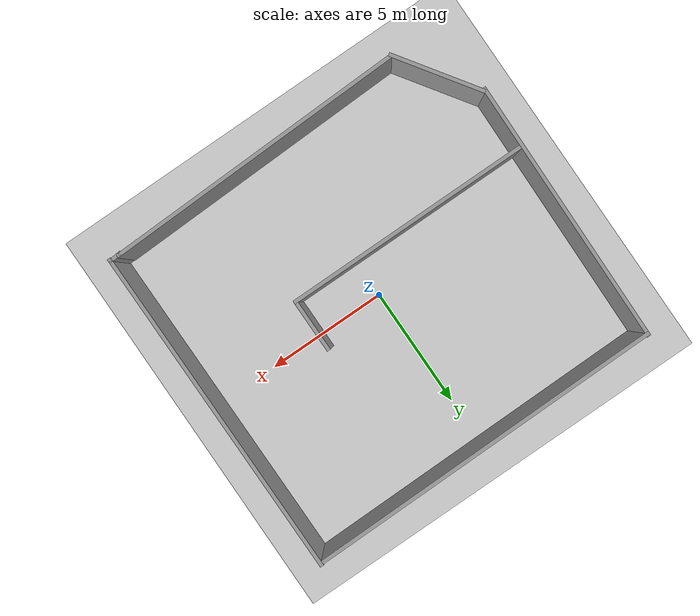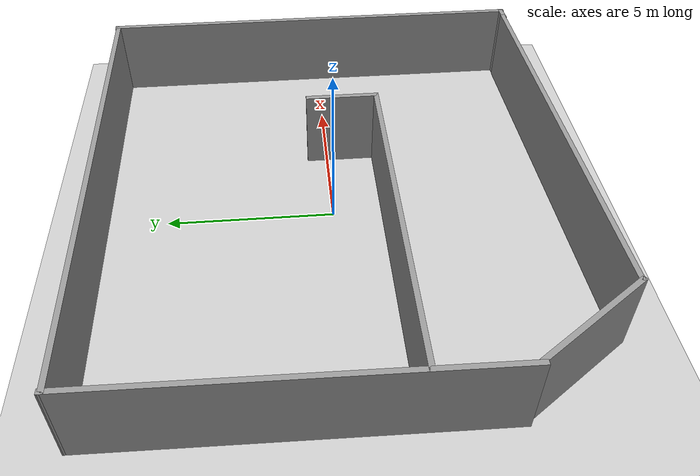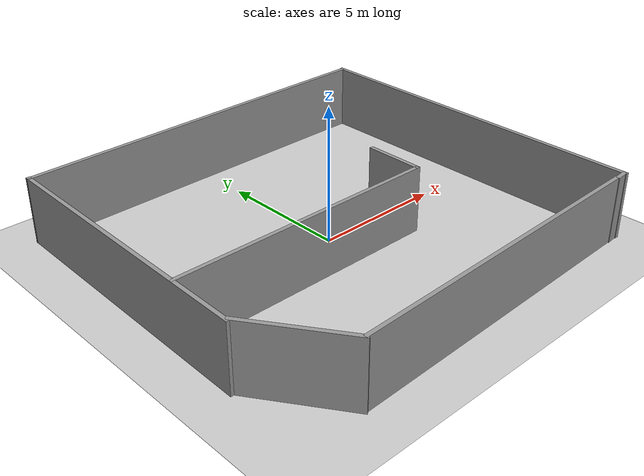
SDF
<sdf version="1.6">
 <world name="default">
  <light name="sun" type="directional">
   <pose>0 0 10 0 -0 0</pose>
   <diffuse>0.8 0.8 0.8 1</diffuse>
   <specular>0.2 0.2 0.2 1</specular>
   <attenuation>
    <range>1000</range>
    <constant>0.9</constant>
    <linear>0.01</linear>
    <quadratic>0.001</quadratic>
   </attenuation>
   <direction>-0.5 0.1 -0.9</direction>
  </light>
  <model name="ground_plane">
   <static>1</static>
   <link name="link">
    <collision name="collision">
     <geometry><plane><normal>0 0 1</normal><size>100 100</size></plane></geometry>
     <surface>
      <contact><collide_bitmask>65535</collide_bitmask></contact>
      <friction><ode><mu>100</mu><mu2>50</mu2></ode></friction>
     </surface>
    </collision>
    <visual name="visual">
     <cast_shadows>0</cast_shadows>
     <geometry><plane><normal>0 0 1</normal><size>100 100</size></plane></geometry>
     <material>
      <script><uri>file://media/materials/scripts/gazebo.material</uri><name>Gazebo/Grey</name></script>
     </material>
    </visual>
   </link>
  </model>
  <gravity>0 0 -9.8</gravity>
  <magnetic_field>6e-06 2.3e-05 -4.2e-05</magnetic_field>
  <atmosphere type="adiabatic"/>
  <physics name="default_physics" default="0" type="ode">
   <max_step_size>0.001</max_step_size>
   <real_time_factor>1</real_time_factor>
   <real_time_update_rate>1000</real_time_update_rate>
  </physics>
  <scene><ambient>0.4 0.4 0.4 1</ambient><background>0.7 0.7 0.7 1</background><shadows>1</shadows></scene>
  <audio><device>default</device></audio>
  <spherical_coordinates>
   <surface_model>EARTH_WGS84</surface_model>
   <latitude_deg>0</latitude_deg>
   <longitude_deg>0</longitude_deg>
   <elevation>0</elevation>
   <heading_deg>0</heading_deg>
  </spherical_coordinates>
  <model name="rmp_world">
   <pose>-0.024552 -0.058873 0 0 -0 0</pose>
   <link name="Wall_0">
    <collision name="Wall_0_Collision">
     <geometry><box><size>3.80454 0.15 2.5</size></box></geometry>
     <pose>0 0 1.25 0 -0 0</pose>
    </collision>
    <visual name="Wall_0_Visual">
     <pose>0 0 1.25 0 -0 0</pose>
     <geometry><box><size>3.80454 0.15 2.5</size></box></geometry>
     <material>
      <script><uri>file://media/materials/scripts/gazebo.material</uri><name>Gazebo/Grey</name></script>
      <ambient>1 1 1 1</ambient>
     </material>
     <meta><layer>0</layer></meta>
    </visual>
    <pose>-6.34726 -5.45836 0 0 -0 -0.969264</pose>
   </link>
   <link name="Wall_1">
    <collision name="Wall_1_Collision">
     <geometry><box><size>12.5097 0.15 2.5</size></box></geometry>
     <pose>0 0 1.25 0 -0 0</pose>
    </collision>
    <visual name="Wall_1_Visual">
     <pose>0 0 1.25 0 -0 0</pose>
     <geometry><box><size>12.5097 0.15 2.5</size></box></geometry>
     <material>
      <script><uri>file://media/materials/scripts/gazebo.material</uri><name>Gazebo/Grey</name></script>
      <ambient>1 1 1 1</ambient>
     </material>
     <meta><layer>0</layer></meta>
    </visual>
    <pose>0.894494 -6.75076 0 0 -0 0.029704</pose>
   </link>
   <link name="Wall_3">
    <collision name="Wall_3_Collision">
     <geometry><box><size>0.563508 0.15 2.5</size></box></geometry>
     <pose>0 0 1.25 0 -0 0</pose>
    </collision>
    <visual name="Wall_3_Visual">
     <pose>0 0 1.25 0 -0 0</pose>
     <geometry><box><size>0.563508 0.15 2.5</size></box></geometry>
     <material>
      <script><uri>file://media/materials/scripts/gazebo.material</uri><name>Gazebo/Grey</name></script>
      <ambient>1 1 1 1</ambient>
     </material>
     <meta><layer>0</layer></meta>
    </visual>
    <pose>7.23676 -6.57816 0 0 -0 0.074045</pose>
   </link>
   <link name="Wall_4">
    <collision name="Wall_4_Collision">
     <geometry><box><size>13.7374 0.15 2.5</size></box></geometry>
     <pose>0 0 1.25 0 -0 0</pose>
    </collision>
    <visual name="Wall_4_Visual">
     <pose>0 0 1.25 0 -0 0</pose>
     <geometry><box><size>13.7374 0.15 2.5</size></box></geometry>
     <material>
      <script><uri>file://media/materials/scripts/gazebo.material</uri><name>Gazebo/Grey</name></script>
      <ambient>1 1 1 1</ambient>
     </material>
     <meta><layer>0</layer></meta>
    </visual>
    <pose>7.41236 0.200187 0 0 -0 1.5753</pose>
   </link>
   <link name="Wall_5">
    <collision name="Wall_5_Collision">
     <geometry><box><size>14.8268 0.15 2.5</size></box></geometry>
     <pose>0 0 1.25 0 -0 0</pose>
    </collision>
    <visual name="Wall_5_Visual">
     <pose>0 0 1.25 0 -0 0</pose>
     <geometry><box><size>14.8268 0.15 2.5</size></box></geometry>
     <material>
      <script><uri>file://media/materials/scripts/gazebo.material</uri><name>Gazebo/Grey</name></script>
      <ambient>1 1 1 1</ambient>
     </material>
     <meta><layer>0</layer></meta>
    </visual>
    <pose>0.043741 6.88676 0 0 -0 -3.13117</pose>
   </link>
   <link name="Wall_6">
    <collision name="Wall_6_Collision">
     <geometry><box><size>10.9641 0.15 2.5</size></box></geometry>
     <pose>0 0 1.25 0 -0 0</pose>
    </collision>
    <visual name="Wall_6_Visual">
     <pose>0 0 1.25 0 -0 0</pose>
     <geometry><box><size>10.9641 0.15 2.5</size></box></geometry>
     <material>
      <script><uri>file://media/materials/scripts/gazebo.material</uri><name>Gazebo/Grey</name></script>
      <ambient>1 1 1 1</ambient>
     </material>
     <meta><layer>0</layer></meta>
    </visual>
    <pose>-7.37076 1.43435 0 0 -0 -1.58494</pose>
   </link>
   <link name="Wall_8">
    <collision name="Wall_8_Collision">
     <geometry><box><size>10.25 0.15 2.5</size></box></geometry>
     <pose>0 0 1.25 0 -0 0</pose>
    </collision>
    <visual name="Wall_8_Visual">
     <pose>0 0 1.25 0 -0 0</pose>
     <geometry><box><size>10.25 0.15 2.5</size></box></geometry>
     <material>
      <script><uri>file://media/materials/scripts/gazebo.material</uri><name>Gazebo/Grey</name></script>
      <ambient>1 1 1 1</ambient>
     </material>
     <meta><layer>0</layer></meta>
    </visual>
    <pose>-2.35802 -1.48489 0 0 -0 0</pose>
   </link>
   <link name="Wall_9">
    <collision name="Wall_9_Collision">
     <geometry><box><size>2.25 0.15 2.5</size></box></geometry>
     <pose>0 0 1.25 0 -0 0</pose>
    </collision>
    <visual name="Wall_9_Visual">
     <pose>0 0 1.25 0 -0 0</pose>
     <geometry><box><size>2.25 0.15 2.5</size></box></geometry>
     <material>
      <script><uri>file://media/materials/scripts/gazebo.material</uri><name>Gazebo/Grey</name></script>
      <ambient>1 1 1 1</ambient>
     </material>
     <meta><layer>0</layer></meta>
    </visual>
    <pose>2.69198 -0.434888 0 0 -0 1.5708</pose>
   </link>
   <static>1</static>
  </model>
 </world>
</sdf>
